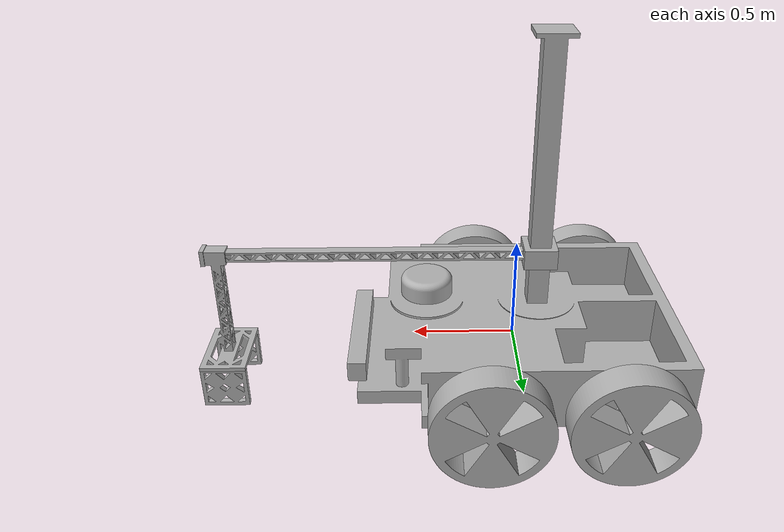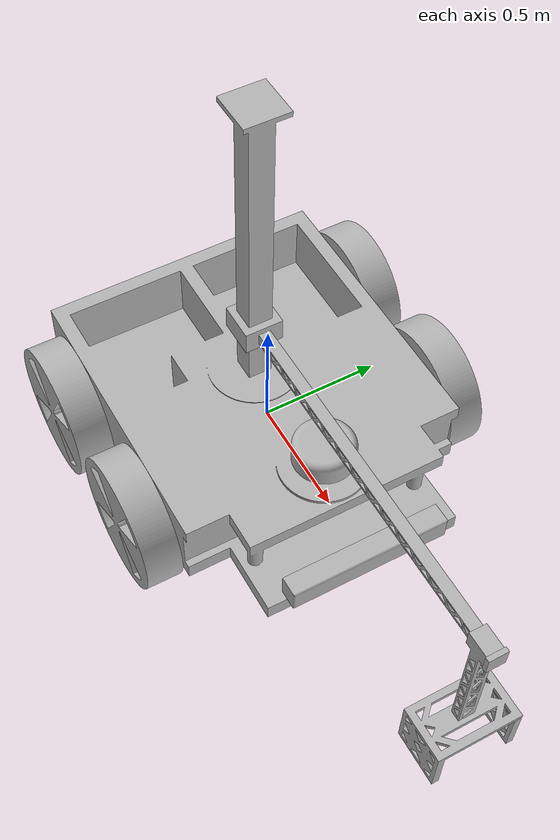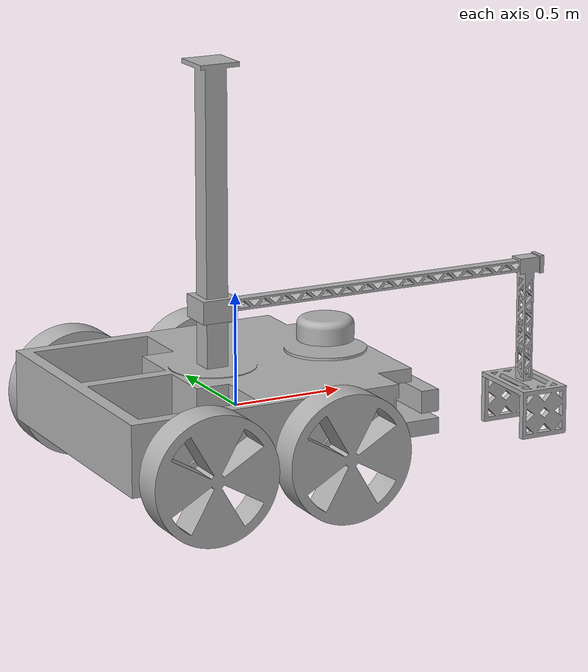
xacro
<?xml version="1.0" ?>
<robot name="janitor" xmlns:xacro="http://www.ros.org/wiki/xacro">

<xacro:include filename="$(find janitor_description)/urdf/materials.xacro" />
<xacro:include filename="$(find janitor_description)/urdf/janitor.trans" />
<xacro:include filename="$(find janitor_description)/urdf/janitor.gazebo" />
<link name="base_link">
  <inertial>
    <origin rpy="0 0 0" xyz="-0.023600320364455807 0.0006366870696410255 0.019438674321253818"/>
    <mass value="329.3286188584961"/>
    <inertia ixx="47.812298" ixy="-0.0" ixz="-1.107359" iyy="52.557928" iyz="-0.0" izz="93.67127"/>
  </inertial>
  <visual>
    <origin rpy="0 0 0" xyz="0 0 0"/>
    <geometry>
      <mesh filename="package://janitor_description/meshes/base_link.stl" scale="0.001 0.001 0.001"/>
    </geometry>
    <material name="silver_default"/>
  </visual>
  <collision>
    <origin rpy="0 0 0" xyz="0 0 0"/>
    <geometry>
      <mesh filename="package://janitor_description/meshes/base_link.stl" scale="0.001 0.001 0.001"/>
    </geometry>
  </collision>
</link>

<link name="rear_right_wheel_1">
  <inertial>
    <origin rpy="0 0 0" xyz="3.265823148579372e-07 -0.07500031293035925 6.503344876507278e-08"/>
    <mass value="29.747053613448767"/>
    <inertia ixx="0.685289" ixy="0.0" ixz="-0.0" iyy="1.259026" iyz="0.0" izz="0.685289"/>
  </inertial>
  <visual>
    <origin rpy="0 0 0" xyz="0.457439 0.609363 0.048402"/>
    <geometry>
      <mesh filename="package://janitor_description/meshes/rear_right_wheel_1.stl" scale="0.001 0.001 0.001"/>
    </geometry>
    <material name="silver_default"/>
  </visual>
  <collision>
    <origin rpy="0 0 0" xyz="0.457439 0.609363 0.048402"/>
    <geometry>
      <mesh filename="package://janitor_description/meshes/rear_right_wheel_1.stl" scale="0.001 0.001 0.001"/>
    </geometry>
  </collision>
</link>

<link name="front_right_wheel_1">
  <inertial>
    <origin rpy="0 0 0" xyz="3.2658231491344836e-07 -0.07500031293035903 6.503344879976725e-08"/>
    <mass value="29.74705361344877"/>
    <inertia ixx="0.685289" ixy="-0.0" ixz="-0.0" iyy="1.259026" iyz="0.0" izz="0.685289"/>
  </inertial>
  <visual>
    <origin rpy="0 0 0" xyz="-0.157561 0.609363 0.048402"/>
    <geometry>
      <mesh filename="package://janitor_description/meshes/front_right_wheel_1.stl" scale="0.001 0.001 0.001"/>
    </geometry>
    <material name="silver_default"/>
  </visual>
  <collision>
    <origin rpy="0 0 0" xyz="-0.157561 0.609363 0.048402"/>
    <geometry>
      <mesh filename="package://janitor_description/meshes/front_right_wheel_1.stl" scale="0.001 0.001 0.001"/>
    </geometry>
  </collision>
</link>

<link name="front_leftt_wheel_1">
  <inertial>
    <origin rpy="0 0 0" xyz="3.265823148579372e-07 0.074999687069641 6.50334488483395e-08"/>
    <mass value="29.74705361344877"/>
    <inertia ixx="0.685289" ixy="0.0" ixz="0.0" iyy="1.259026" iyz="0.0" izz="0.685289"/>
  </inertial>
  <visual>
    <origin rpy="0 0 0" xyz="-0.157561 -0.610637 0.048402"/>
    <geometry>
      <mesh filename="package://janitor_description/meshes/front_leftt_wheel_1.stl" scale="0.001 0.001 0.001"/>
    </geometry>
    <material name="silver_default"/>
  </visual>
  <collision>
    <origin rpy="0 0 0" xyz="-0.157561 -0.610637 0.048402"/>
    <geometry>
      <mesh filename="package://janitor_description/meshes/front_leftt_wheel_1.stl" scale="0.001 0.001 0.001"/>
    </geometry>
  </collision>
</link>

<link name="rear_left_wheel_1">
  <inertial>
    <origin rpy="0 0 0" xyz="3.265823148579372e-07 0.074999687069641 6.503344888997287e-08"/>
    <mass value="29.747053613448767"/>
    <inertia ixx="0.685289" ixy="0.0" ixz="0.0" iyy="1.259026" iyz="0.0" izz="0.685289"/>
  </inertial>
  <visual>
    <origin rpy="0 0 0" xyz="0.457439 -0.610637 0.048402"/>
    <geometry>
      <mesh filename="package://janitor_description/meshes/rear_left_wheel_1.stl" scale="0.001 0.001 0.001"/>
    </geometry>
    <material name="silver_default"/>
  </visual>
  <collision>
    <origin rpy="0 0 0" xyz="0.457439 -0.610637 0.048402"/>
    <geometry>
      <mesh filename="package://janitor_description/meshes/rear_left_wheel_1.stl" scale="0.001 0.001 0.001"/>
    </geometry>
  </collision>
</link>

<link name="rgbd_camera_1">
  <inertial>
    <origin rpy="0 0 0" xyz="0.004767808175927257 -3.1293035905100887e-07 0.05000038601495657"/>
    <mass value="6.3547497618390105"/>
    <inertia ixx="0.246993" ixy="-0.0" ixz="0.0" iyy="0.009422" iyz="-0.0" izz="0.245912"/>
  </inertial>
  <visual>
    <origin rpy="0 0 0" xyz="-0.765061 -0.000637 0.048864"/>
    <geometry>
      <mesh filename="package://janitor_description/meshes/rgbd_camera_1.stl" scale="0.001 0.001 0.001"/>
    </geometry>
    <material name="silver_default"/>
  </visual>
  <collision>
    <origin rpy="0 0 0" xyz="-0.765061 -0.000637 0.048864"/>
    <geometry>
      <mesh filename="package://janitor_description/meshes/rgbd_camera_1.stl" scale="0.001 0.001 0.001"/>
    </geometry>
  </collision>
</link>

<link name="lidar_1">
  <inertial>
    <origin rpy="0 0 0" xyz="3.2658231491344836e-07 -3.129303590334448e-07 0.04870065350554012"/>
    <mass value="5.051088077638525"/>
    <inertia ixx="0.023293" ixy="0.0" ixz="-0.0" iyy="0.023293" iyz="0.0" izz="0.038507"/>
  </inertial>
  <visual>
    <origin rpy="0 0 0" xyz="-0.435061 -0.000637 -0.203136"/>
    <geometry>
      <mesh filename="package://janitor_description/meshes/lidar_1.stl" scale="0.001 0.001 0.001"/>
    </geometry>
    <material name="silver_default"/>
  </visual>
  <collision>
    <origin rpy="0 0 0" xyz="-0.435061 -0.000637 -0.203136"/>
    <geometry>
      <mesh filename="package://janitor_description/meshes/lidar_1.stl" scale="0.001 0.001 0.001"/>
    </geometry>
  </collision>
</link>

<link name="vertical_body_1">
  <inertial>
    <origin rpy="0 0 0" xyz="-2.220270275826719e-07 -3.129303590596825e-07 0.6797932577648836"/>
    <mass value="14.513519999999996"/>
    <inertia ixx="2.249865" ixy="0.0" ixz="0.0" iyy="2.249865" iyz="-0.0" izz="0.026865"/>
  </inertial>
  <visual>
    <origin rpy="0 0 0" xyz="0.108697 -0.000637 -0.195136"/>
    <geometry>
      <mesh filename="package://janitor_description/meshes/vertical_body_1.stl" scale="0.001 0.001 0.001"/>
    </geometry>
    <material name="silver_default"/>
  </visual>
  <collision>
    <origin rpy="0 0 0" xyz="0.108697 -0.000637 -0.195136"/>
    <geometry>
      <mesh filename="package://janitor_description/meshes/vertical_body_1.stl" scale="0.001 0.001 0.001"/>
    </geometry>
  </collision>
</link>

<link name="horizontal_body_1">
  <inertial>
    <origin rpy="0 0 0" xyz="0.5984419722507355 -3.129303590811497e-07 0.04970922857426663"/>
    <mass value="3.0"/>
    <inertia ixx="0.007712" ixy="-0.0" ixz="0.000479" iyy="1.407278" iyz="0.0" izz="1.410619"/>
  </inertial>
  <visual>
    <origin rpy="0 0 0" xyz="0.158697 -0.000637 -0.401136"/>
    <geometry>
      <mesh filename="package://janitor_description/meshes/horizontal_body_1.stl" scale="0.001 0.001 0.001"/>
    </geometry>
    <material name="silver_default"/>
  </visual>
  <collision>
    <origin rpy="0 0 0" xyz="0.158697 -0.000637 -0.401136"/>
    <geometry>
      <mesh filename="package://janitor_description/meshes/horizontal_body_1.stl" scale="0.001 0.001 0.001"/>
    </geometry>
  </collision>
</link>

<link name="vertical_pickup_body_1">
  <inertial>
    <origin rpy="0 0 0" xyz="-0.04787954786711146 -0.05575573742860998 -0.512801661589241"/>
    <mass value="3.3011829023328936"/>
    <inertia ixx="0.183863" ixy="7e-05" ixz="0.000668" iyy="0.158497" iyz="-0.031306" izz="0.047022"/>
  </inertial>
  <visual>
    <origin rpy="0 0 0" xyz="-1.496303 -0.000637 -0.476136"/>
    <geometry>
      <mesh filename="package://janitor_description/meshes/vertical_pickup_body_1.stl" scale="0.001 0.001 0.001"/>
    </geometry>
    <material name="silver_default"/>
  </visual>
  <collision>
    <origin rpy="0 0 0" xyz="-1.496303 -0.000637 -0.476136"/>
    <geometry>
      <mesh filename="package://janitor_description/meshes/vertical_pickup_body_1.stl" scale="0.001 0.001 0.001"/>
    </geometry>
  </collision>
</link>

<link name="gripper_1">
  <inertial>
    <origin rpy="0 0 0" xyz="-2.2202702276707953e-07 -0.015000312930359055 -0.10632446634511768"/>
    <mass value="1.1878142875593714"/>
    <inertia ixx="0.004456" ixy="0.0" ixz="0.0" iyy="0.009497" iyz="0.0" izz="0.005219"/>
  </inertial>
  <visual>
    <origin rpy="0 0 0" xyz="-1.448803 -0.180637 0.103864"/>
    <geometry>
      <mesh filename="package://janitor_description/meshes/gripper_1.stl" scale="0.001 0.001 0.001"/>
    </geometry>
    <material name="silver_default"/>
  </visual>
  <collision>
    <origin rpy="0 0 0" xyz="-1.448803 -0.180637 0.103864"/>
    <geometry>
      <mesh filename="package://janitor_description/meshes/gripper_1.stl" scale="0.001 0.001 0.001"/>
    </geometry>
  </collision>
</link>

<joint name="rear_right_wheel_joint" type="continuous">
  <origin rpy="0 0 0" xyz="-0.457439 -0.609363 -0.048402"/>
  <parent link="base_link"/>
  <child link="rear_right_wheel_1"/>
  <axis xyz="0.0 1.0 0.0"/>
</joint>

<joint name="front_right_wheel_joint" type="continuous">
  <origin rpy="0 0 0" xyz="0.157561 -0.609363 -0.048402"/>
  <parent link="base_link"/>
  <child link="front_right_wheel_1"/>
  <axis xyz="0.0 1.0 0.0"/>
</joint>

<joint name="front_left_wheel_joint" type="continuous">
  <origin rpy="0 0 0" xyz="0.157561 0.610637 -0.048402"/>
  <parent link="base_link"/>
  <child link="front_leftt_wheel_1"/>
  <axis xyz="-0.0 1.0 -0.0"/>
</joint>

<joint name="rear_left_wheel_joint" type="continuous">
  <origin rpy="0 0 0" xyz="-0.457439 0.610637 -0.048402"/>
  <parent link="base_link"/>
  <child link="rear_left_wheel_1"/>
  <axis xyz="-0.0 1.0 -0.0"/>
</joint>

<joint name="rigid_camera_base" type="fixed">
  <origin rpy="0 0 0" xyz="0.765061 0.000637 -0.048864"/>
  <parent link="base_link"/>
  <child link="rgbd_camera_1"/>
</joint>

<joint name="rigid_lidar_base" type="fixed">
  <origin rpy="0 0 0" xyz="0.435061 0.000637 0.24"/>
  <parent link="base_link"/>
  <child link="lidar_1"/>
</joint>

<joint name="twist_joint" type="revolute">
  <origin rpy="0 0 0" xyz="-0.108697 0.000637 0.195136"/>
  <parent link="base_link"/>
  <child link="vertical_body_1"/>
  <axis xyz="0.0 0.0 1.0"/>
  <limit effort="100" lower="-3.141593" upper="3.141593" velocity="0.4"/>
</joint>

<joint name="prismatic_vertical" type="prismatic">
  <origin rpy="0 0 0" xyz="-0.05 0.0 0.206"/>
  <parent link="vertical_body_1"/>
  <child link="horizontal_body_1"/>
  <axis xyz="0.0 0.0 1.0"/>
  <limit effort="15000" lower="0.0" upper="0.975" velocity="5"/>
</joint>

<joint name="prismatic_horizontal" type="prismatic">
  <origin rpy="0 0 0" xyz="1.655 0.0 0.075"/>
  <parent link="horizontal_body_1"/>
  <child link="vertical_pickup_body_1"/>
  <axis xyz="-1.0 0.0 0.0"/>
  <limit effort="100" lower="0.0" upper="1.4" velocity="100"/>
</joint>

<joint name="prismatic_gripper" type="prismatic">
  <origin rpy="0 0 0" xyz="-0.0475 0.18 -0.58"/>
  <parent link="vertical_pickup_body_1"/>
  <child link="gripper_1"/>
  <axis xyz="-0.0 1.0 0.0"/>
  <limit effort="100" lower="-0.225" upper="0.0" velocity="100"/>
</joint>

<joint name="camera_optical_joint" type="fixed">
    <origin xyz="0 0 0" rpy="${-pi/2} 0 ${-pi/2}"/>
    <parent link="rgbd_camera_1"/>
    <child link="camera_rgb_frame"/>
  </joint>

  <link name="camera_rgb_frame">
  </link>

  <joint name="camera_depth_joint" type="fixed">
    <origin xyz="0 0 0" rpy="${-pi/2} 0 ${-pi/2}"/>
    <parent link="rgbd_camera_1"/>
    <child link="camera_depth_frame"/>
  </joint>

    <link name="camera_depth_frame">
  </link>

</robot>

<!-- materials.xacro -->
<robot name="janitor" xmlns:xacro="http://www.ros.org/wiki/xacro" >

<material name="silver_default">
  <color rgba="0.700 0.700 0.700 1.000"/>
</material>

</robot>

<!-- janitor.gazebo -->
<robot name="janitor" xmlns:xacro="http://www.ros.org/wiki/xacro" >

<xacro:property name="body_color" value="Gazebo/Silver" />

<gazebo>
  <plugin filename="libgazebo_ros_control.so" name="control">
  <robotNamespace>/janitor</robotNamespace>
  </plugin>
</gazebo>

<gazebo>
  <plugin name="skid_steer_drive_controller" filename="libgazebo_ros_skid_steer_drive.so">
    <updateRate>100.0</updateRate>
    <robotNamespace>/</robotNamespace>
    <leftFrontJoint>front_left_wheel_joint</leftFrontJoint>
    <rightFrontJoint>front_right_wheel_joint</rightFrontJoint>
    <leftRearJoint>rear_left_wheel_joint</leftRearJoint>
    <rightRearJoint>rear_right_wheel_joint</rightRearJoint>
    <wheelSeparation>1.22</wheelSeparation>
    <wheelDiameter>0.28</wheelDiameter>
    <robotBaseFrame>base_link</robotBaseFrame>
    <torque>20</torque>
    <topicName>cmd_vel</topicName>
    <broadcastTF>true</broadcastTF>
    <commandTopic>cmd_vel</commandTopic>
    <odometryTopic>odom</odometryTopic>
    <odometryFrame>odom</odometryFrame>
    <covariance_x>0.00001</covariance_x>
    <covariance_y>0.00001</covariance_y>
    <covariance_yaw>0.00001</covariance_yaw>
  </plugin>
</gazebo>

<gazebo reference="base_link">
  <material>${body_color}</material>
  <mu1>0.2</mu1>
  <mu2>0.2</mu2>
  <selfCollide>true</selfCollide>
  <gravity>true</gravity>
</gazebo>

<gazebo reference="rear_right_wheel_1">
  <mu1>0.1</mu1>
  <mu2>0.1</mu2>
  <selfCollide>true</selfCollide>
  <material>Gazebo/Orange</material>
</gazebo>

<gazebo reference="front_right_wheel_1">
  <mu1>0.1</mu1>
  <mu2>0.1</mu2>
  <selfCollide>true</selfCollide>
  <material>Gazebo/Orange</material>
</gazebo>

<gazebo reference="front_leftt_wheel_1">
  <mu1>0.1</mu1>
  <mu2>0.1</mu2>
  <selfCollide>true</selfCollide>
  <material>Gazebo/Orange</material>
</gazebo>

<gazebo reference="rear_left_wheel_1">
  <mu1>0.1</mu1>
  <mu2>0.1</mu2>
  <selfCollide>true</selfCollide>
  <material>Gazebo/Orange</material>
</gazebo>

<gazebo reference="rgbd_camera_1">
  <mu1>0.2</mu1>
  <mu2>0.2</mu2>
  <selfCollide>true</selfCollide>
  <sensor type="depth" name="intelrealsenseD435i">
    <always_on>1</always_on>
    <visualize>true</visualize>
    <camera>
      <horizontal_fov>1.047</horizontal_fov>
      <image>
        <width>640</width>
        <height>480</height>
        <format>B8G8R8</format>
      </image>
      <clip>
        <near>0.01</near>
        <far>9.0</far>
      </clip>
    </camera>
    <plugin name="intelrealsense" filename="libgazebo_ros_openni_kinect.so">
      <alwaysOn>true</alwaysOn>
      <updateRate>20.0</updateRate>
      <cameraName>camera</cameraName>
      <frameName>camera_depth_frame</frameName>
      <imageTopicName>/camera/color/image_raw</imageTopicName>
      <depthImageTopicName>/camera/depth/image_rect_raw</depthImageTopicName>
      <pointCloudTopicName>depth/points</pointCloudTopicName>
      <cameraInfoTopicName>/camera/color/camera_info</cameraInfoTopicName>
      <depthImageCameraInfoTopicName>/camera/depth/camera_info</depthImageCameraInfoTopicName>
      <pointCloudCutoff>0.01</pointCloudCutoff>
      <pointCloudCutoffMax>5.0</pointCloudCutoffMax>
    </plugin>
  </sensor>
  <material>Gazebo/Black</material>
</gazebo>

<gazebo reference="lidar_1">
  <mu1>0.2</mu1>
  <mu2>0.2</mu2>
  <selfCollide>true</selfCollide>
  <sensor type="ray" name="head_rplidar_sensor">
      <pose>0 0 0 0 0 0</pose>
      <visualize>false</visualize>
      <update_rate>40</update_rate>
      <ray>
        <scan>
          <horizontal>
            <samples>720</samples>
            <resolution>1</resolution>
            <min_angle>-2.35619</min_angle>
            <max_angle>2.35619</max_angle>
          </horizontal>
        </scan>
        <range>
          <min>0.5</min>
          <max>20.0</max>
          <resolution>0.01</resolution>
        </range>
        <noise>
          <type>gaussian</type>
          <mean>0.0</mean>
          <stddev>0.01</stddev>
        </noise>
      </ray>
      <plugin name="gazebo_ros_head_rplidar_controller" filename="libgazebo_ros_laser.so">
        <topicName>/bot1/laser/scan</topicName>
        <frameName>lidar_1</frameName>
      </plugin>
    </sensor>
    <material>Gazebo/Black</material>
</gazebo>

<gazebo reference="vertical_body_1">
  <material>${body_color}</material>
  <mu1>0.2</mu1>
  <mu2>0.2</mu2>
  <selfCollide>true</selfCollide>
</gazebo>

<gazebo reference="horizontal_body_1">
  <material>${body_color}</material>
  <mu1>0.2</mu1>
  <mu2>0.2</mu2>
  <selfCollide>true</selfCollide>
</gazebo>

<gazebo reference="vertical_pickup_body_1">
  <material>${body_color}</material>
  <mu1>0.2</mu1>
  <mu2>0.2</mu2>
  <selfCollide>true</selfCollide>
</gazebo>

<gazebo reference="gripper_1">
  <material>${body_color}</material>
  <mu1>10000</mu1>
  <mu2>10000</mu2>
  <selfCollide>true</selfCollide>
</gazebo>

</robot>
